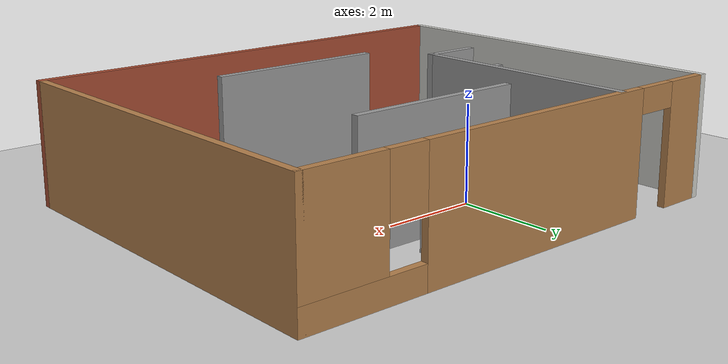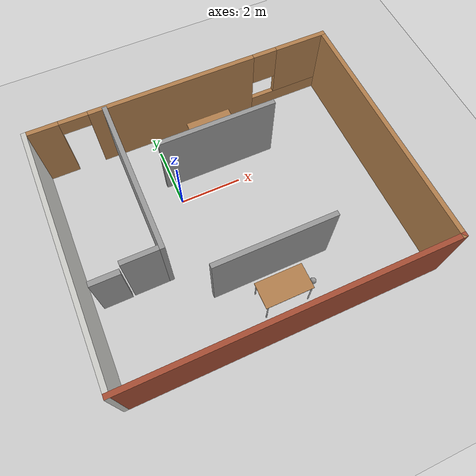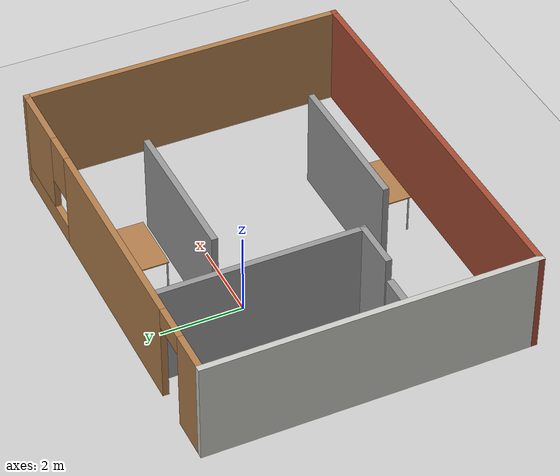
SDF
<sdf version="1.6">
 <world name="default">
  <plugin name="hello" filename="libhello.so"/>
  <light name="sun" type="directional">
   <pose>0 0 10 0 -0 0</pose>
   <diffuse>0.8 0.8 0.8 1</diffuse>
   <specular>0.2 0.2 0.2 1</specular>
   <attenuation>
    <range>1000</range>
    <constant>0.9</constant>
    <linear>0.01</linear>
    <quadratic>0.001</quadratic>
   </attenuation>
   <direction>-0.5 0.1 -0.9</direction>
  </light>
  <model name="ground_plane">
   <static>1</static>
   <link name="link">
    <collision name="collision">
     <geometry><plane><normal>0 0 1</normal><size>100 100</size></plane></geometry>
     <surface>
      <contact><collide_bitmask>65535</collide_bitmask></contact>
      <friction><ode><mu>100</mu><mu2>50</mu2></ode></friction>
     </surface>
    </collision>
    <visual name="visual">
     <cast_shadows>0</cast_shadows>
     <geometry><plane><normal>0 0 1</normal><size>100 100</size></plane></geometry>
     <material>
      <script><uri>file://media/materials/scripts/gazebo.material</uri><name>Gazebo/Grey</name></script>
     </material>
    </visual>
   </link>
  </model>
  <gravity>0 0 -9.8</gravity>
  <magnetic_field>6e-06 2.3e-05 -4.2e-05</magnetic_field>
  <atmosphere type="adiabatic"/>
  <physics name="default_physics" default="0" type="ode">
   <max_step_size>0.001</max_step_size>
   <real_time_factor>1</real_time_factor>
   <real_time_update_rate>1000</real_time_update_rate>
  </physics>
  <scene><ambient>0.4 0.4 0.4 1</ambient><background>0.7 0.7 0.7 1</background><shadows>1</shadows></scene>
  <spherical_coordinates>
   <surface_model>EARTH_WGS84</surface_model>
   <latitude_deg>0</latitude_deg>
   <longitude_deg>0</longitude_deg>
   <elevation>0</elevation>
   <heading_deg>0</heading_deg>
  </spherical_coordinates>
  <model name="mybuilding">
   <pose>1.21707 -1.29966 0 0 -0 0</pose>
   <link name="Door_2">
    <collision name="Door_2_Collision">
     <geometry><box><size>0.9 0.17 2</size></box></geometry>
     <pose>0 0 1 0 -0 0</pose>
    </collision>
    <visual name="Door_2_Visual">
     <pose>0 0 1 0 -0 0</pose>
     <geometry><box><size>0.9 0.17 2</size></box></geometry>
     <material>
      <script><uri>file://media/materials/scripts/gazebo.material</uri><name>Gazebo/Grey</name></script>
     </material>
    </visual>
    <pose>-4.16533 -0.987413 0 0 -0 0</pose>
   </link>
   <link name="Wall_11">
    <collision name="Wall_11_Collision">
     <geometry><box><size>5 0.15 2.5</size></box></geometry>
     <pose>0 0 1.25 0 -0 0</pose>
    </collision>
    <visual name="Wall_11_Visual">
     <pose>0 0 1.25 0 -0 0</pose>
     <geometry><box><size>5 0.15 2.5</size></box></geometry>
     <material>
      <script><uri>file://media/materials/scripts/gazebo.material</uri><name>Gazebo/Grey</name></script>
      <ambient>1 1 1 1</ambient>
     </material>
     <meta><layer>0</layer></meta>
    </visual>
    <pose>-2.47679 1.44501 0 0 0 -1.5708</pose>
   </link>
   <link name="Wall_12">
    <collision name="Wall_12_Collision">
     <geometry><box><size>1.25 0.15 2.5</size></box></geometry>
     <pose>0 0 1.25 0 -0 0</pose>
    </collision>
    <visual name="Wall_12_Visual">
     <pose>0 0 1.25 0 -0 0</pose>
     <geometry><box><size>1.25 0.15 2.5</size></box></geometry>
     <material>
      <script><uri>file://media/materials/scripts/gazebo.material</uri><name>Gazebo/Grey</name></script>
      <ambient>1 1 1 1</ambient>
     </material>
     <meta><layer>0</layer></meta>
    </visual>
    <pose>-3.02679 -0.979985 0 0 -0 3.14159</pose>
   </link>
   <link name="Wall_15">
    <collision name="Wall_15_Collision">
     <geometry><box><size>3.75 0.15 2.5</size></box></geometry>
     <pose>0 0 1.25 0 -0 0</pose>
    </collision>
    <visual name="Wall_15_Visual">
     <pose>0 0 1.25 0 -0 0</pose>
     <geometry><box><size>3.75 0.15 2.5</size></box></geometry>
     <material>
      <script><uri>file://media/materials/scripts/gazebo.material</uri><name>Gazebo/Grey</name></script>
      <ambient>1 1 1 1</ambient>
     </material>
     <meta><layer>0</layer></meta>
    </visual>
    <pose>0.410344 2.06583 0 0 -0 0</pose>
   </link>
   <link name="Wall_17">
    <collision name="Wall_17_Collision">
     <geometry><box><size>3.75 0.15 2.5</size></box></geometry>
     <pose>0 0 1.25 0 -0 0</pose>
    </collision>
    <visual name="Wall_17_Visual">
     <pose>0 0 1.25 0 -0 0</pose>
     <geometry><box><size>3.75 0.15 2.5</size></box></geometry>
     <material>
      <script><uri>file://media/materials/scripts/gazebo.material</uri><name>Gazebo/Grey</name></script>
      <ambient>1 1 1 1</ambient>
     </material>
     <meta><layer>0</layer></meta>
    </visual>
    <pose>0.340952 -2.00516 0 0 -0 0</pose>
   </link>
   <link name="Wall_5">
    <collision name="Wall_5_Collision">
     <geometry><box><size>10 0.15 2.5</size></box></geometry>
     <pose>0 0 1.25 0 -0 0</pose>
    </collision>
    <visual name="Wall_5_Visual">
     <pose>0 0 1.25 0 -0 0</pose>
     <geometry><box><size>10 0.15 2.5</size></box></geometry>
     <material>
      <script><uri>file://media/materials/scripts/gazebo.material</uri><name>Gazebo/Bricks</name></script>
      <ambient>1 1 1 1</ambient>
     </material>
     <meta><layer>0</layer></meta>
    </visual>
    <pose>0 -3.925 0 0 -0 3.14159</pose>
   </link>
   <link name="Wall_7">
    <collision name="Wall_7_Collision">
     <geometry><box><size>8 0.15 2.5</size></box></geometry>
     <pose>0 0 1.25 0 -0 0</pose>
    </collision>
    <visual name="Wall_7_Visual">
     <pose>0 0 1.25 0 -0 0</pose>
     <geometry><box><size>8 0.15 2.5</size></box></geometry>
     <material>
      <script><uri>file://media/materials/scripts/gazebo.material</uri><name>Gazebo/CeilingTiled</name></script>
      <ambient>1 1 1 1</ambient>
     </material>
     <meta><layer>0</layer></meta>
    </visual>
    <pose>-4.925 0 0 0 -0 1.5708</pose>
   </link>
   <link name="Wall_8">
    <pose>0 3.925 0 0 -0 0</pose>
    <visual name="Wall_8_Visual_0">
     <pose>-4.44914 0 1.25 0 -0 0</pose>
     <geometry><box><size>1.10172 0.15 2.5</size></box></geometry>
     <material>
      <script><uri>file://media/materials/scripts/gazebo.material</uri><name>Gazebo/Wood</name></script>
      <ambient>1 1 1 1</ambient>
     </material>
     <meta><layer>0</layer></meta>
    </visual>
    <collision name="Wall_8_Collision_0">
     <geometry><box><size>1.10172 0.15 2.5</size></box></geometry>
     <pose>-4.44914 0 1.25 0 -0 0</pose>
    </collision>
    <visual name="Wall_8_Visual_1">
     <pose>-0.277517 0 1.25 0 -0 0</pose>
     <geometry><box><size>5.44153 0.15 2.5</size></box></geometry>
     <material>
      <script><uri>file://media/materials/scripts/gazebo.material</uri><name>Gazebo/Wood</name></script>
      <ambient>1 1 1 1</ambient>
     </material>
     <meta><layer>0</layer></meta>
    </visual>
    <collision name="Wall_8_Collision_1">
     <geometry><box><size>5.44153 0.15 2.5</size></box></geometry>
     <pose>-0.277517 0 1.25 0 -0 0</pose>
    </collision>
    <visual name="Wall_8_Visual_2">
     <pose>3.72162 0 0.25 0 -0 0</pose>
     <geometry><box><size>2.55675 0.15 0.5</size></box></geometry>
     <material>
      <script><uri>file://media/materials/scripts/gazebo.material</uri><name>Gazebo/Wood</name></script>
      <ambient>1 1 1 1</ambient>
     </material>
     <meta><layer>0</layer></meta>
    </visual>
    <collision name="Wall_8_Collision_2">
     <geometry><box><size>2.55675 0.15 0.5</size></box></geometry>
     <pose>3.72162 0 0.25 0 -0 0</pose>
    </collision>
    <visual name="Wall_8_Visual_3">
     <pose>4.12162 0 1.5 0 -0 0</pose>
     <geometry><box><size>1.75676 0.15 2</size></box></geometry>
     <material>
      <script><uri>file://media/materials/scripts/gazebo.material</uri><name>Gazebo/Wood</name></script>
      <ambient>1 1 1 1</ambient>
     </material>
     <meta><layer>0</layer></meta>
    </visual>
    <collision name="Wall_8_Collision_3">
     <geometry><box><size>1.75676 0.15 2</size></box></geometry>
     <pose>4.12162 0 1.5 0 -0 0</pose>
    </collision>
    <visual name="Wall_8_Visual_4">
     <pose>2.84325 0 1.9 0 -0 0</pose>
     <geometry><box><size>0.8 0.15 1.2</size></box></geometry>
     <material>
      <script><uri>file://media/materials/scripts/gazebo.material</uri><name>Gazebo/Wood</name></script>
      <ambient>1 1 1 1</ambient>
     </material>
     <meta><layer>0</layer></meta>
    </visual>
    <collision name="Wall_8_Collision_4">
     <geometry><box><size>0.8 0.15 1.2</size></box></geometry>
     <pose>2.84325 0 1.9 0 -0 0</pose>
    </collision>
    <visual name="Wall_8_Visual_5">
     <pose>-3.44828 0 2.25 0 -0 0</pose>
     <geometry><box><size>0.9 0.15 0.5</size></box></geometry>
     <material>
      <script><uri>file://media/materials/scripts/gazebo.material</uri><name>Gazebo/Wood</name></script>
      <ambient>1 1 1 1</ambient>
     </material>
     <meta><layer>0</layer></meta>
    </visual>
    <collision name="Wall_8_Collision_5">
     <geometry><box><size>0.9 0.15 0.5</size></box></geometry>
     <pose>-3.44828 0 2.25 0 -0 0</pose>
    </collision>
   </link>
   <link name="Wall_9">
    <collision name="Wall_9_Collision">
     <geometry><box><size>8 0.15 2.5</size></box></geometry>
     <pose>0 0 1.25 0 -0 0</pose>
    </collision>
    <visual name="Wall_9_Visual">
     <pose>0 0 1.25 0 -0 0</pose>
     <geometry><box><size>8 0.15 2.5</size></box></geometry>
     <material>
      <script><uri>file://media/materials/scripts/gazebo.material</uri><name>Gazebo/Wood</name></script>
      <ambient>1 1 1 1</ambient>
     </material>
     <meta><layer>0</layer></meta>
    </visual>
    <pose>4.925 0 0 0 0 -1.5708</pose>
   </link>
   <static>1</static>
  </model>
  <model name="table">
   <static>1</static>
   <link name="link">
    <collision name="surface">
     <pose>0 0 1 0 -0 0</pose>
     <geometry><box><size>1.5 0.8 0.03</size></box></geometry>
     <surface><friction><ode><mu>0.6</mu><mu2>0.6</mu2></ode></friction></surface>
    </collision>
    <visual name="visual1">
     <pose>0 0 1 0 -0 0</pose>
     <geometry><box><size>1.5 0.8 0.03</size></box></geometry>
     <material>
      <script><uri>file://media/materials/scripts/gazebo.material</uri><name>Gazebo/Wood</name></script>
     </material>
    </visual>
    <collision name="front_left_leg">
     <pose>0.68 0.38 0.5 0 -0 0</pose>
     <geometry><cylinder><radius>0.02</radius><length>1</length></cylinder></geometry>
    </collision>
    <visual name="front_left_leg">
     <pose>0.68 0.38 0.5 0 -0 0</pose>
     <geometry><cylinder><radius>0.02</radius><length>1</length></cylinder></geometry>
     <material>
      <script><uri>file://media/materials/scripts/gazebo.material</uri><name>Gazebo/Grey</name></script>
     </material>
    </visual>
    <collision name="front_right_leg">
     <pose>0.68 -0.38 0.5 0 -0 0</pose>
     <geometry><cylinder><radius>0.02</radius><length>1</length></cylinder></geometry>
    </collision>
    <visual name="front_right_leg">
     <pose>0.68 -0.38 0.5 0 -0 0</pose>
     <geometry><cylinder><radius>0.02</radius><length>1</length></cylinder></geometry>
     <material>
      <script><uri>file://media/materials/scripts/gazebo.material</uri><name>Gazebo/Grey</name></script>
     </material>
    </visual>
    <collision name="back_right_leg">
     <pose>-0.68 -0.38 0.5 0 -0 0</pose>
     <geometry><cylinder><radius>0.02</radius><length>1</length></cylinder></geometry>
    </collision>
    <visual name="back_right_leg">
     <pose>-0.68 -0.38 0.5 0 -0 0</pose>
     <geometry><cylinder><radius>0.02</radius><length>1</length></cylinder></geometry>
     <material>
      <script><uri>file://media/materials/scripts/gazebo.material</uri><name>Gazebo/Grey</name></script>
     </material>
    </visual>
    <collision name="back_left_leg">
     <pose>-0.68 0.38 0.5 0 -0 0</pose>
     <geometry><cylinder><radius>0.02</radius><length>1</length></cylinder></geometry>
    </collision>
    <visual name="back_left_leg">
     <pose>-0.68 0.38 0.5 0 -0 0</pose>
     <geometry><cylinder><radius>0.02</radius><length>1</length></cylinder></geometry>
     <material>
      <script><uri>file://media/materials/scripts/gazebo.material</uri><name>Gazebo/Grey</name></script>
     </material>
    </visual>
   </link>
   <pose>1.51911 -4.14859 0 0 -0 0</pose>
  </model>
  <model name="table_0">
   <static>1</static>
   <link name="link">
    <collision name="surface">
     <pose>0 0 1 0 -0 0</pose>
     <geometry><box><size>1.5 0.8 0.03</size></box></geometry>
     <surface><friction><ode><mu>0.6</mu><mu2>0.6</mu2></ode></friction></surface>
    </collision>
    <visual name="visual1">
     <pose>0 0 1 0 -0 0</pose>
     <geometry><box><size>1.5 0.8 0.03</size></box></geometry>
     <material>
      <script><uri>file://media/materials/scripts/gazebo.material</uri><name>Gazebo/Wood</name></script>
     </material>
    </visual>
    <collision name="front_left_leg">
     <pose>0.68 0.38 0.5 0 -0 0</pose>
     <geometry><cylinder><radius>0.02</radius><length>1</length></cylinder></geometry>
    </collision>
    <visual name="front_left_leg">
     <pose>0.68 0.38 0.5 0 -0 0</pose>
     <geometry><cylinder><radius>0.02</radius><length>1</length></cylinder></geometry>
     <material>
      <script><uri>file://media/materials/scripts/gazebo.material</uri><name>Gazebo/Grey</name></script>
     </material>
    </visual>
    <collision name="front_right_leg">
     <pose>0.68 -0.38 0.5 0 -0 0</pose>
     <geometry><cylinder><radius>0.02</radius><length>1</length></cylinder></geometry>
    </collision>
    <visual name="front_right_leg">
     <pose>0.68 -0.38 0.5 0 -0 0</pose>
     <geometry><cylinder><radius>0.02</radius><length>1</length></cylinder></geometry>
     <material>
      <script><uri>file://media/materials/scripts/gazebo.material</uri><name>Gazebo/Grey</name></script>
     </material>
    </visual>
    <collision name="back_right_leg">
     <pose>-0.68 -0.38 0.5 0 -0 0</pose>
     <geometry><cylinder><radius>0.02</radius><length>1</length></cylinder></geometry>
    </collision>
    <visual name="back_right_leg">
     <pose>-0.68 -0.38 0.5 0 -0 0</pose>
     <geometry><cylinder><radius>0.02</radius><length>1</length></cylinder></geometry>
     <material>
      <script><uri>file://media/materials/scripts/gazebo.material</uri><name>Gazebo/Grey</name></script>
     </material>
    </visual>
    <collision name="back_left_leg">
     <pose>-0.68 0.38 0.5 0 -0 0</pose>
     <geometry><cylinder><radius>0.02</radius><length>1</length></cylinder></geometry>
    </collision>
    <visual name="back_left_leg">
     <pose>-0.68 0.38 0.5 0 -0 0</pose>
     <geometry><cylinder><radius>0.02</radius><length>1</length></cylinder></geometry>
     <material>
      <script><uri>file://media/materials/scripts/gazebo.material</uri><name>Gazebo/Grey</name></script>
     </material>
    </visual>
   </link>
   <pose>1.80619 1.7044 0 0 -0 0</pose>
  </model>
  <model name="my_ball">
   <link name="link_0">
    <inertial>
     <mass>1</mass>
     <inertia><ixx>0.1</ixx><ixy>0</ixy><ixz>0</ixz><iyy>0.1</iyy><iyz>0</iyz><izz>0.1</izz></inertia>
    </inertial>
    <visual name="visual">
     <geometry><sphere><radius>0.1</radius></sphere></geometry>
     <material>
      <lighting>1</lighting>
      <script><uri>file://media/materials/scripts/gazebo.material</uri><name>Gazebo/Grey</name></script>
      <shader type="pixel"><normal_map>__default__</normal_map></shader>
      <ambient>1 1 1 1</ambient>
      <diffuse>1 1 1 1</diffuse>
      <specular>1 1 1 1</specular>
      <emissive>0 0 0 1</emissive>
     </material>
    </visual>
    <collision name="collision">
     <geometry><sphere><radius>0.1</radius></sphere></geometry>
     <surface>
      <friction>
       <ode><mu>1</mu><mu2>1</mu2><fdir1>0 0 0</fdir1><slip1>0</slip1><slip2>0</slip2></ode>
       <torsional>
        <coefficient>1</coefficient>
        <patch_radius>0</patch_radius>
        <surface_radius>0</surface_radius>
        <use_patch_radius>1</use_patch_radius>
        <ode><slip>0</slip></ode>
       </torsional>
      </friction>
      <bounce><restitution_coefficient>0</restitution_coefficient><threshold>1e+06</threshold></bounce>
      <contact>
       <collide_without_contact>0</collide_without_contact>
       <collide_without_contact_bitmask>1</collide_without_contact_bitmask>
       <collide_bitmask>1</collide_bitmask>
       <ode>
        <soft_cfm>0</soft_cfm>
        <soft_erp>0.2</soft_erp>
        <kp>1e+13</kp>
        <kd>1</kd>
        <max_vel>0.01</max_vel>
        <min_depth>0</min_depth>
       </ode>
       <bullet>
        <split_impulse>1</split_impulse>
        <split_impulse_penetration_threshold>-0.01</split_impulse_penetration_threshold>
        <soft_cfm>0</soft_cfm>
        <soft_erp>0.2</soft_erp>
        <kp>1e+13</kp>
        <kd>1</kd>
       </bullet>
      </contact>
     </surface>
    </collision>
   </link>
   <static>0</static>
   <pose>2.57564 -4.12586 0.1 0 -0 0</pose>
  </model>
 </world>
</sdf>
